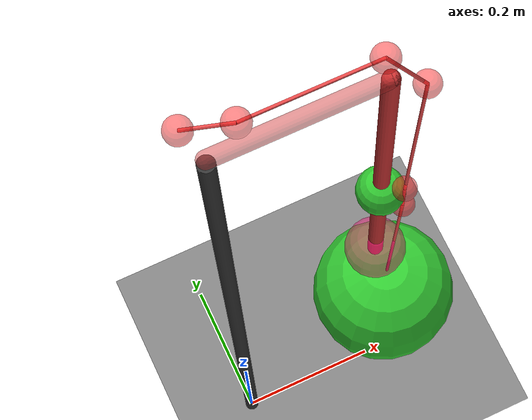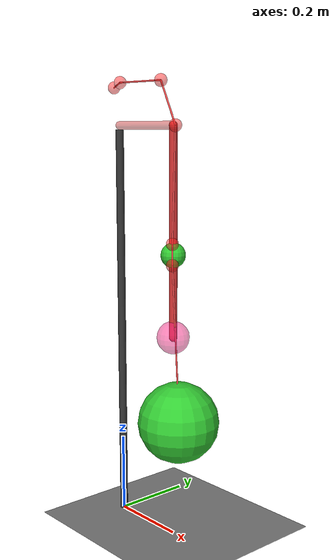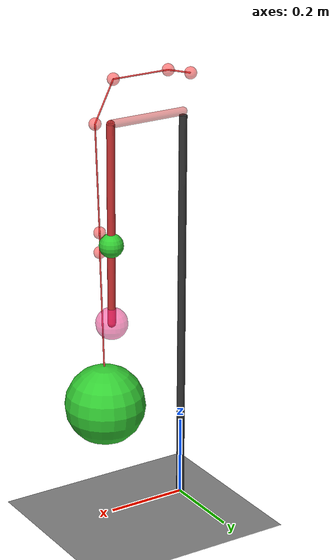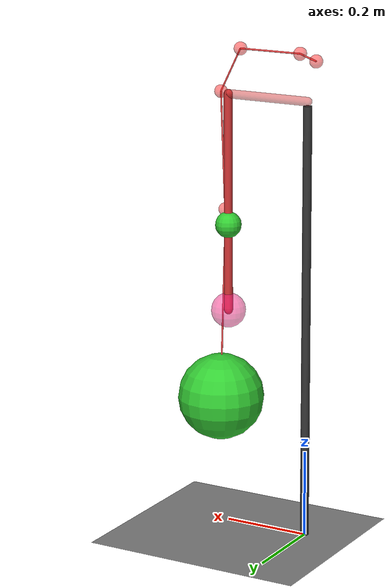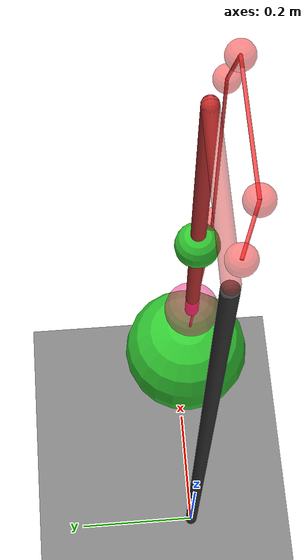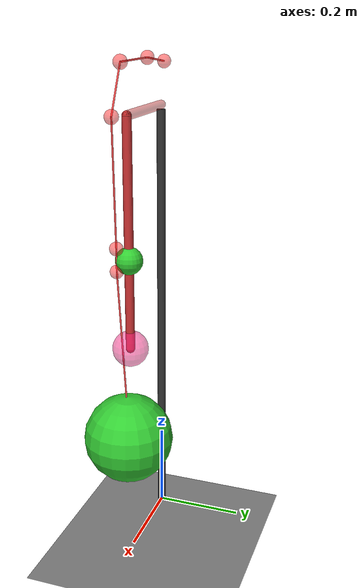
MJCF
<?xml version="1.0" encoding="utf-8"?>
<mujoco model="inverted_pendulum">
    <compiler angle="radian" meshdir="meshes" autolimits="true" />
    <option timestep="0.002" gravity="0 0 -9.81" wind="0 0 0" integrator="implicitfast"
        density="1.225"
        viscosity="1.8e-5" />

    <visual>
        <global realtime="1" />
        <quality shadowsize="16384" numslices="28" offsamples="4" />
        <headlight diffuse="1 1 1" specular="0.5 0.5 0.5" active="1" />
        <rgba fog="1 0 0 1" haze="1 1 1 1" />
    </visual>

    <asset>
        <texture name="plane" type="2d" builtin="checker" rgb1=".1 .1 .1" rgb2=".9 .9 .9"
            width="512" height="512" mark="cross" markrgb=".8 .8 .8" />
        <material name="plane" reflectance="0.3" texture="plane" texrepeat="1 1" texuniform="true" />
        <material name="box" rgba="0 0.5 0 1" emission="0" />
    </asset>

    <default>
        <geom solref=".5e-4" solimp="0.9 0.99 1e-4" fluidcoef="0.5 0.25 0.5 2.0 1.0" />
        <site size="0.04" group="2" rgba="1 0.1 0.5 0.5" />
        <default class="muscle">
            <site size="0.015" group="2" rgba="1 0.1 0.1 0.5"/>
            <tendon rgba="0.95 0.3 0.3 41" width="0.002"/>
        </default>
    </default>

    <tendon>
    <spatial class="muscle" name="tendon1" >
      <site site="muscle_site_1"/>
      <site site="muscle_site_2"/>
      <site site="muscle_site_3"/>
      <site site="muscle_site_4"/>
      <site site="muscle_site_5"/>
      <site site="muscle_site_6"/>
      <site site="muscle_site_end"/>
    </spatial>
    </tendon>
    <worldbody>
        <geom name="floor" pos="0 0 0" size="10 10 .1" type="plane" material="plane"
            condim="3" />
        <light directional="true" ambient=".3 .3 .3" pos="30 30 30" dir="0 -2 -1"
            diffuse=".5 .5 .5" specular=".5 .5 .5" />

        <body name="support" pos="0 0 0.5">
            <geom type="cylinder" mass="100" size="0.01 0.5" rgba="0.2 0.2 0.2 1"/>
            <site name="muscle_site_1" class="muscle" pos="-0.02 0 0.6"/>

            <body name="rotay_am" pos="0 0 0.51">
                <joint type="hinge" name="joint1" pos="0 0 0" axis="0 0 1" damping="0.001"
                    frictionloss="0.0" stiffness="0.5"/>
                <geom type="capsule" mass="0.01" fromto="0 0 0 0.2 0 0" size="0.01"
                    rgba="0.8 0.2 0.2 0.5"/>
                <site name="muscle_site_2" class="muscle" pos="0.03 -0.02 0.1"/>
                <site name="muscle_site_3" class="muscle" pos="0.18 -0.02 0.1"/>
                <body name="pendulum" pos="0.2 0 0">
                    <joint type="hinge" name="joint2" pos="0 0 0" axis="1 0 0" damping="0.001"
                        frictionloss="0.0" />
                    <geom type="capsule" mass="0.005" fromto="0 0 0 0 0 -0.3" size="0.01"
                        rgba="0.8 0.2 0.2 1" />
                    <site name="muscle_site_4" class="muscle" pos="0.03 -0.02 0.0"/>
                    <site name="muscle_site_5" class="muscle" pos="0.02 -0.02 -0.27"/>
                    <geom type="sphere" mass="0.01" size="0.03" pos="0 0 -0.3" rgba="0.2 0.8 0.2 1" />
                    <body name="pendulum2" pos="0 0 -0.3">
                        <joint type="hinge" name="joint3" pos="0 0 0" axis="1 0 0" damping="0.001"
                        frictionloss="0.0" />
                        <geom type="capsule" mass="0.005" fromto="0 0 0 0 0 -0.2" size="0.01"
                        rgba="0.8 0.2 0.2 1" />
                        <site name="muscle_site_6" class="muscle" pos="0.02 -0.02 -0.02"/>
                        <site name="site1" pos="0 0 -0.2" />
                    </body>
                </body>
            </body>
        </body>
        <body name="ball" pos="0.22 0 0.3">
            <joint type="free" name="freejoint" pos="0 0 0" damping="0.001"
            frictionloss="0.0" />
            <geom type="sphere" mass="0.1" size="0.1" pos="0 0 -0" rgba="0.2 0.8 0.2 1" />
            <site name="muscle_site_end" class="muscle" pos="0 0 0.035"/>
        </body>
    </worldbody>
    <actuator>
        <muscle name="muscle1" force="10" class="muscle" tendon="tendon1" lengthrange="0.875 1.025"/>
    </actuator>

</mujoco>
